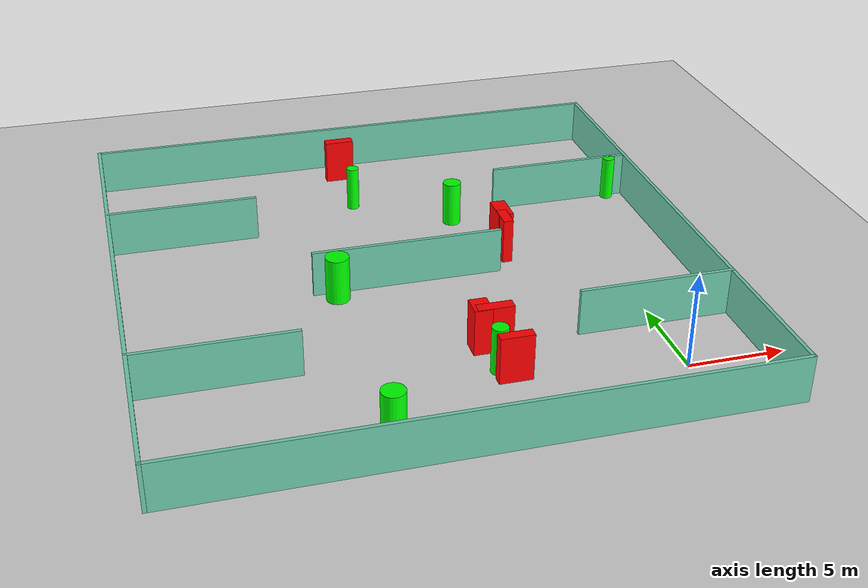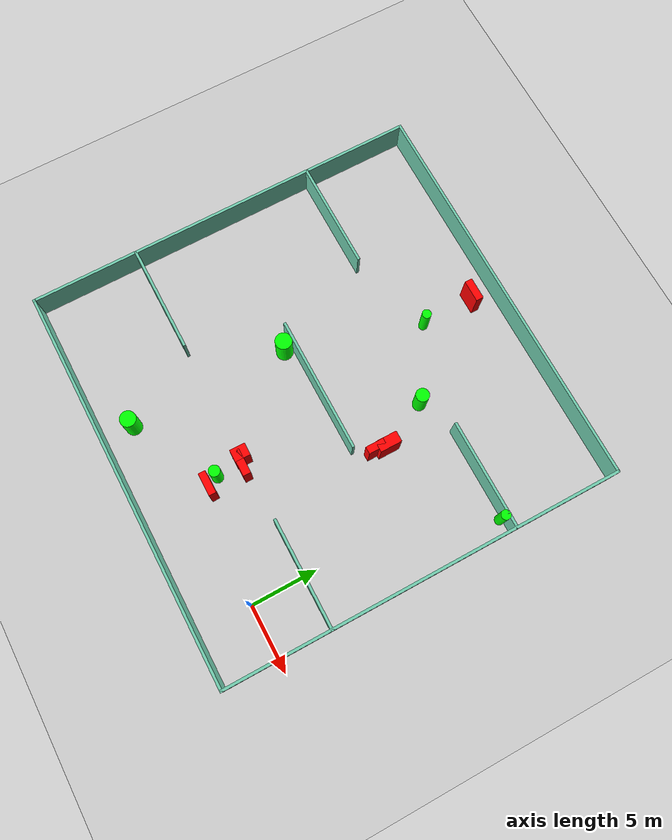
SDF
<sdf version="1.7">
 <world name="default">
  <light name="sun" type="directional">
   <pose>0 0 10 0 -0 0</pose>
   <diffuse>0.8 0.8 0.8 1</diffuse>
   <specular>0.2 0.2 0.2 1</specular>
   <attenuation>
    <range>1000</range>
    <constant>0.9</constant>
    <linear>0.01</linear>
    <quadratic>0.001</quadratic>
   </attenuation>
   <direction>-0.5 0.1 -0.9</direction>
   <spot><inner_angle>0</inner_angle><outer_angle>0</outer_angle><falloff>0</falloff></spot>
  </light>
  <model name="ground_plane">
   <static>1</static>
   <link name="link">
    <collision name="collision">
     <geometry><plane><normal>0 0 1</normal><size>100 100</size></plane></geometry>
     <surface>
      <contact><collide_bitmask>65535</collide_bitmask></contact>
      <friction><ode><mu>100</mu><mu2>50</mu2></ode></friction>
     </surface>
    </collision>
    <visual name="visual">
     <cast_shadows>0</cast_shadows>
     <geometry><plane><normal>0 0 1</normal><size>100 100</size></plane></geometry>
     <material>
      <script><uri>file://media/materials/scripts/gazebo.material</uri><name>Gazebo/Grey</name></script>
     </material>
    </visual>
   </link>
  </model>
  <gravity>0 0 -9.8</gravity>
  <magnetic_field>6e-06 2.3e-05 -4.2e-05</magnetic_field>
  <atmosphere type="adiabatic"/>
  <physics type="ode">
   <max_step_size>0.001</max_step_size>
   <real_time_factor>1</real_time_factor>
   <real_time_update_rate>1000</real_time_update_rate>
  </physics>
  <scene><ambient>0.4 0.4 0.4 1</ambient><background>0.7 0.7 0.7 1</background><shadows>1</shadows></scene>
  <spherical_coordinates>
   <surface_model>EARTH_WGS84</surface_model>
   <latitude_deg>0</latitude_deg>
   <longitude_deg>0</longitude_deg>
   <elevation>0</elevation>
   <heading_deg>0</heading_deg>
  </spherical_coordinates>
  <model name="my_base_walls">
   <link name="Wall_10">
    <collision name="Wall_10_Collision">
     <geometry><box><size>8.2 0.2 2.5</size></box></geometry>
     <pose>0 0 1.25 0 -0 0</pose>
    </collision>
    <visual name="Wall_10_Visual">
     <pose>0 0 1.25 0 -0 0</pose>
     <geometry><box><size>8.2 0.2 2.5</size></box></geometry>
     <material>
      <script><uri>file://media/materials/scripts/gazebo.material</uri><name>Gazebo/Grey</name></script>
      <ambient>0.435294 0.796078 0.67451 1</ambient>
     </material>
     <meta><layer>0</layer></meta>
    </visual>
    <pose>-11 -7 0 0 -0 0</pose>
   </link>
   <link name="Wall_12">
    <collision name="Wall_12_Collision">
     <geometry><box><size>8.2 0.2 2.5</size></box></geometry>
     <pose>0 0 1.25 0 -0 0</pose>
    </collision>
    <visual name="Wall_12_Visual">
     <pose>0 0 1.25 0 -0 0</pose>
     <geometry><box><size>8.2 0.2 2.5</size></box></geometry>
     <material>
      <script><uri>file://media/materials/scripts/gazebo.material</uri><name>Gazebo/Grey</name></script>
      <ambient>0.435294 0.796078 0.67451 1</ambient>
     </material>
     <meta><layer>0</layer></meta>
    </visual>
    <pose>-11 7 0 0 -0 0</pose>
   </link>
   <link name="Wall_14">
    <collision name="Wall_14_Collision">
     <geometry><box><size>8.2 0.2 2.5</size></box></geometry>
     <pose>0 0 1.25 0 -0 0</pose>
    </collision>
    <visual name="Wall_14_Visual">
     <pose>0 0 1.25 0 -0 0</pose>
     <geometry><box><size>8.2 0.2 2.5</size></box></geometry>
     <material>
      <script><uri>file://media/materials/scripts/gazebo.material</uri><name>Gazebo/Grey</name></script>
      <ambient>0.435294 0.796078 0.67451 1</ambient>
     </material>
     <meta><layer>0</layer></meta>
    </visual>
    <pose>11 7 0 0 -0 3.14159</pose>
   </link>
   <link name="Wall_16">
    <collision name="Wall_16_Collision">
     <geometry><box><size>10.2 0.2 2.5</size></box></geometry>
     <pose>0 0 1.25 0 -0 0</pose>
    </collision>
    <visual name="Wall_16_Visual">
     <pose>0 0 1.25 0 -0 0</pose>
     <geometry><box><size>10.2 0.2 2.5</size></box></geometry>
     <material>
      <script><uri>file://media/materials/scripts/gazebo.material</uri><name>Gazebo/Grey</name></script>
      <ambient>0.435294 0.796078 0.67451 1</ambient>
     </material>
     <meta><layer>0</layer></meta>
    </visual>
    <pose>0 0 0 0 -0 3.14159</pose>
   </link>
   <link name="Wall_2">
    <collision name="Wall_2_Collision">
     <geometry><box><size>30.2 0.2 2.5</size></box></geometry>
     <pose>0 0 1.25 0 -0 0</pose>
    </collision>
    <visual name="Wall_2_Visual">
     <pose>0 0 1.25 0 -0 0</pose>
     <geometry><box><size>30.2 0.2 2.5</size></box></geometry>
     <material>
      <script><uri>file://media/materials/scripts/gazebo.material</uri><name>Gazebo/Grey</name></script>
      <ambient>0.435294 0.796078 0.67451 1</ambient>
     </material>
     <meta><layer>0</layer></meta>
    </visual>
    <pose>0 -15 0 0 -0 3.14159</pose>
   </link>
   <link name="Wall_3">
    <collision name="Wall_3_Collision">
     <geometry><box><size>30.2 0.2 2.5</size></box></geometry>
     <pose>0 0 1.25 0 -0 0</pose>
    </collision>
    <visual name="Wall_3_Visual">
     <pose>0 0 1.25 0 -0 0</pose>
     <geometry><box><size>30.2 0.2 2.5</size></box></geometry>
     <material>
      <script><uri>file://media/materials/scripts/gazebo.material</uri><name>Gazebo/Grey</name></script>
      <ambient>0.435294 0.796078 0.67451 1</ambient>
     </material>
     <meta><layer>0</layer></meta>
    </visual>
    <pose>-15 0 0 0 -0 1.5708</pose>
   </link>
   <link name="Wall_4">
    <collision name="Wall_4_Collision">
     <geometry><box><size>30.2 0.2 2.5</size></box></geometry>
     <pose>0 0 1.25 0 -0 0</pose>
    </collision>
    <visual name="Wall_4_Visual">
     <pose>0 0 1.25 0 -0 0</pose>
     <geometry><box><size>30.2 0.2 2.5</size></box></geometry>
     <material>
      <script><uri>file://media/materials/scripts/gazebo.material</uri><name>Gazebo/Grey</name></script>
      <ambient>0.435294 0.796078 0.67451 1</ambient>
     </material>
     <meta><layer>0</layer></meta>
    </visual>
    <pose>0 15 0 0 -0 0</pose>
   </link>
   <link name="Wall_6">
    <collision name="Wall_6_Collision">
     <geometry><box><size>30.2 0.2 2.5</size></box></geometry>
     <pose>0 0 1.25 0 -0 0</pose>
    </collision>
    <visual name="Wall_6_Visual">
     <pose>0 0 1.25 0 -0 0</pose>
     <geometry><box><size>30.2 0.2 2.5</size></box></geometry>
     <material>
      <script><uri>file://media/materials/scripts/gazebo.material</uri><name>Gazebo/Grey</name></script>
      <ambient>0.435294 0.796078 0.67451 1</ambient>
     </material>
     <meta><layer>0</layer></meta>
    </visual>
    <pose>15 0 0 0 -0 1.5708</pose>
   </link>
   <link name="Wall_8">
    <collision name="Wall_8_Collision">
     <geometry><box><size>8.2 0.2 2.5</size></box></geometry>
     <pose>0 0 1.25 0 -0 0</pose>
    </collision>
    <visual name="Wall_8_Visual">
     <pose>0 0 1.25 0 -0 0</pose>
     <geometry><box><size>8.2 0.2 2.5</size></box></geometry>
     <material>
      <script><uri>file://media/materials/scripts/gazebo.material</uri><name>Gazebo/Grey</name></script>
      <ambient>0.435294 0.796078 0.67451 1</ambient>
     </material>
     <meta><layer>0</layer></meta>
    </visual>
    <pose>11 -7 0 0 -0 3.14159</pose>
   </link>
   <static>1</static>
   <pose>-11 11 0 0 -0 0</pose>
  </model>
  <model name="cylinder1">
   <static>1</static>
   <link name="link">
    <inertial>
     <mass>1</mass>
     <inertia><ixx>0.5</ixx><ixy>0</ixy><ixz>0</ixz><iyy>0.5</iyy><iyz>0</iyz><izz>1</izz></inertia>
    </inertial>
    <collision name="collision">
     <geometry><cylinder><radius>0.49799811325270016</radius><length>2.5</length></cylinder></geometry>
    </collision>
    <visual name="visual">
     <geometry><cylinder><radius>0.49799811325270016</radius><length>2.5</length></cylinder></geometry>
     <material>
      <ambient>0 1 0 1</ambient>
      <diffuse>0 1 0 1</diffuse>
      <specular>0.1 0.1 0.1 1</specular>
      <emissive>0 0 0 0</emissive>
     </material>
    </visual>
   </link>
   <pose>-6.881153634765852 16.98682082065528 1.25 0 0 0</pose>
  </model>
  <model name="cylinder2">
   <static>1</static>
   <link name="link">
    <inertial>
     <mass>1</mass>
     <inertia><ixx>0.5</ixx><ixy>0</ixy><ixz>0</ixz><iyy>0.5</iyy><iyz>0</iyz><izz>1</izz></inertia>
    </inertial>
    <collision name="collision">
     <geometry><cylinder><radius>0.34023226555556085</radius><length>2.5</length></cylinder></geometry>
    </collision>
    <visual name="visual">
     <geometry><cylinder><radius>0.34023226555556085</radius><length>2.5</length></cylinder></geometry>
     <material>
      <ambient>0 1 0 1</ambient>
      <diffuse>0 1 0 1</diffuse>
      <specular>0.1 0.1 0.1 1</specular>
      <emissive>0 0 0 0</emissive>
     </material>
    </visual>
   </link>
   <pose>-11.938128481052283 20.22883890365741 1.25 0 0 0</pose>
  </model>
  <model name="cylinder3">
   <static>1</static>
   <link name="link">
    <inertial>
     <mass>1</mass>
     <inertia><ixx>0.5</ixx><ixy>0</ixy><ixz>0</ixz><iyy>0.5</iyy><iyz>0</iyz><izz>1</izz></inertia>
    </inertial>
    <collision name="collision">
     <geometry><cylinder><radius>0.6287452709846095</radius><length>2.5</length></cylinder></geometry>
    </collision>
    <visual name="visual">
     <geometry><cylinder><radius>0.6287452709846095</radius><length>2.5</length></cylinder></geometry>
     <material>
      <ambient>0 1 0 1</ambient>
      <diffuse>0 1 0 1</diffuse>
      <specular>0.1 0.1 0.1 1</specular>
      <emissive>0 0 0 0</emissive>
     </material>
    </visual>
   </link>
   <pose>-14.922247256441976 10.305545382328662 1.25 0 0 0</pose>
  </model>
  <model name="cylinder4">
   <static>1</static>
   <link name="link">
    <inertial>
     <mass>1</mass>
     <inertia><ixx>0.5</ixx><ixy>0</ixy><ixz>0</ixz><iyy>0.5</iyy><iyz>0</iyz><izz>1</izz></inertia>
    </inertial>
    <collision name="collision">
     <geometry><cylinder><radius>0.35543631965402867</radius><length>2.5</length></cylinder></geometry>
    </collision>
    <visual name="visual">
     <geometry><cylinder><radius>0.35543631965402867</radius><length>2.5</length></cylinder></geometry>
     <material>
      <ambient>0 1 0 1</ambient>
      <diffuse>0 1 0 1</diffuse>
      <specular>0.1 0.1 0.1 1</specular>
      <emissive>0 0 0 0</emissive>
     </material>
    </visual>
   </link>
   <pose>2.940732958067372 17.762610408205916 1.25 0 0 0</pose>
  </model>
  <model name="cylinder5">
   <static>1</static>
   <link name="link">
    <inertial>
     <mass>1</mass>
     <inertia><ixx>0.5</ixx><ixy>0</ixy><ixz>0</ixz><iyy>0.5</iyy><iyz>0</iyz><izz>1</izz></inertia>
    </inertial>
    <collision name="collision">
     <geometry><cylinder><radius>0.4181197647368835</radius><length>2.5</length></cylinder></geometry>
    </collision>
    <visual name="visual">
     <geometry><cylinder><radius>0.4181197647368835</radius><length>2.5</length></cylinder></geometry>
     <material>
      <ambient>0 1 0 1</ambient>
      <diffuse>0 1 0 1</diffuse>
      <specular>0.1 0.1 0.1 1</specular>
      <emissive>0 0 0 0</emissive>
     </material>
    </visual>
   </link>
   <pose>-8.90137504764315 1.8909529472108213 1.25 0 0 0</pose>
  </model>
  <model name="cylinder6">
   <static>1</static>
   <link name="link">
    <inertial>
     <mass>1</mass>
     <inertia><ixx>0.5</ixx><ixy>0</ixy><ixz>0</ixz><iyy>0.5</iyy><iyz>0</iyz><izz>1</izz></inertia>
    </inertial>
    <collision name="collision">
     <geometry><cylinder><radius>0.5924022142421816</radius><length>2.5</length></cylinder></geometry>
    </collision>
    <visual name="visual">
     <geometry><cylinder><radius>0.5924022142421816</radius><length>2.5</length></cylinder></geometry>
     <material>
      <ambient>0 1 0 1</ambient>
      <diffuse>0 1 0 1</diffuse>
      <specular>0.1 0.1 0.1 1</specular>
      <emissive>0 0 0 0</emissive>
     </material>
    </visual>
   </link>
   <pose>-14.9515888101979 -1.7528235643910466 1.25 0 0 0</pose>
  </model>
  <model name="box1">
   <static>1</static>
   <link name="link">
    <inertial>
     <mass>1</mass>
     <inertia><ixx>0.083</ixx><ixy>0</ixy><ixz>0</ixz><iyy>0.083</iyy><iyz>0</iyz><izz>0.083</izz></inertia>
    </inertial>
    <collision name="collision">
     <geometry><box><size>1.6292415219925405 0.563102952598031 2.5</size></box></geometry>
    </collision>
    <visual name="visual">
     <geometry><box><size>1.6292415219925405 0.563102952598031 2.5</size></box></geometry>
     <material>
      <ambient>1 0 0 1</ambient>
      <diffuse>1 0 0 1</diffuse>
      <specular>0.1 0.1 0.1 1</specular>
      <emissive>0 0 0 0</emissive>
     </material>
    </visual>
    <sensor name="my_contact" type="contact">
     <contact><collision>box_collision</collision><topic>__default_topic__</topic></contact>
    </sensor>
   </link>
   <pose>-11.942190137189353 24.149305891813952 1.25 0 0 0</pose>
  </model>
  <model name="box2">
   <static>1</static>
   <link name="link">
    <inertial>
     <mass>1</mass>
     <inertia><ixx>0.083</ixx><ixy>0</ixy><ixz>0</ixz><iyy>0.083</iyy><iyz>0</iyz><izz>0.083</izz></inertia>
    </inertial>
    <collision name="collision">
     <geometry><box><size>1.7057748344102706 0.5373214842203463 2.5</size></box></geometry>
    </collision>
    <visual name="visual">
     <geometry><box><size>1.7057748344102706 0.5373214842203463 2.5</size></box></geometry>
     <material>
      <ambient>1 0 0 1</ambient>
      <diffuse>1 0 0 1</diffuse>
      <specular>0.1 0.1 0.1 1</specular>
      <emissive>0 0 0 0</emissive>
     </material>
    </visual>
    <sensor name="my_contact" type="contact">
     <contact><collision>box_collision</collision><topic>__default_topic__</topic></contact>
    </sensor>
   </link>
   <pose>-8.380042271525145 1.0859635497856956 1.25 0 0 0</pose>
  </model>
  <model name="box3">
   <static>1</static>
   <link name="link">
    <inertial>
     <mass>1</mass>
     <inertia><ixx>0.083</ixx><ixy>0</ixy><ixz>0</ixz><iyy>0.083</iyy><iyz>0</iyz><izz>0.083</izz></inertia>
    </inertial>
    <collision name="collision">
     <geometry><box><size>0.537493939168311 1.3524111310689277 2.5</size></box></geometry>
    </collision>
    <visual name="visual">
     <geometry><box><size>0.537493939168311 1.3524111310689277 2.5</size></box></geometry>
     <material>
      <ambient>1 0 0 1</ambient>
      <diffuse>1 0 0 1</diffuse>
      <specular>0.1 0.1 0.1 1</specular>
      <emissive>0 0 0 0</emissive>
     </material>
    </visual>
    <sensor name="my_contact" type="contact">
     <contact><collision>box_collision</collision><topic>__default_topic__</topic></contact>
    </sensor>
   </link>
   <pose>-5.239133122712257 12.39472913839819 1.25 0 0 0</pose>
  </model>
  <model name="box4">
   <static>1</static>
   <link name="link">
    <inertial>
     <mass>1</mass>
     <inertia><ixx>0.083</ixx><ixy>0</ixy><ixz>0</ixz><iyy>0.083</iyy><iyz>0</iyz><izz>0.083</izz></inertia>
    </inertial>
    <collision name="collision">
     <geometry><box><size>1.8504757667350331 0.5881255596581277 2.5</size></box></geometry>
    </collision>
    <visual name="visual">
     <geometry><box><size>1.8504757667350331 0.5881255596581277 2.5</size></box></geometry>
     <material>
      <ambient>1 0 0 1</ambient>
      <diffuse>1 0 0 1</diffuse>
      <specular>0.1 0.1 0.1 1</specular>
      <emissive>0 0 0 0</emissive>
     </material>
    </visual>
    <sensor name="my_contact" type="contact">
     <contact><collision>box_collision</collision><topic>__default_topic__</topic></contact>
    </sensor>
   </link>
   <pose>-8.566874819815133 3.7483980672192 1.25 0 0 0</pose>
  </model>
  <model name="box5">
   <static>1</static>
   <link name="link">
    <inertial>
     <mass>1</mass>
     <inertia><ixx>0.083</ixx><ixy>0</ixy><ixz>0</ixz><iyy>0.083</iyy><iyz>0</iyz><izz>0.083</izz></inertia>
    </inertial>
    <collision name="collision">
     <geometry><box><size>0.9207900174179067 1.1562535812143675 2.5</size></box></geometry>
    </collision>
    <visual name="visual">
     <geometry><box><size>0.9207900174179067 1.1562535812143675 2.5</size></box></geometry>
     <material>
      <ambient>1 0 0 1</ambient>
      <diffuse>1 0 0 1</diffuse>
      <specular>0.1 0.1 0.1 1</specular>
      <emissive>0 0 0 0</emissive>
     </material>
    </visual>
    <sensor name="my_contact" type="contact">
     <contact><collision>box_collision</collision><topic>__default_topic__</topic></contact>
    </sensor>
   </link>
   <pose>-9.217234447575946 3.995209062747696 1.25 0 0 0</pose>
  </model>
  <model name="box6">
   <static>1</static>
   <link name="link">
    <inertial>
     <mass>1</mass>
     <inertia><ixx>0.083</ixx><ixy>0</ixy><ixz>0</ixz><iyy>0.083</iyy><iyz>0</iyz><izz>0.083</izz></inertia>
    </inertial>
    <collision name="collision">
     <geometry><box><size>0.8194451279481536 1.634696728692581 2.5</size></box></geometry>
    </collision>
    <visual name="visual">
     <geometry><box><size>0.8194451279481536 1.634696728692581 2.5</size></box></geometry>
     <material>
      <ambient>1 0 0 1</ambient>
      <diffuse>1 0 0 1</diffuse>
      <specular>0.1 0.1 0.1 1</specular>
      <emissive>0 0 0 0</emissive>
     </material>
    </visual>
    <sensor name="my_contact" type="contact">
     <contact><collision>box_collision</collision><topic>__default_topic__</topic></contact>
    </sensor>
   </link>
   <pose>-5.121201350846974 13.297997233456037 1.25 0 0 0</pose>
  </model>
 </world>
</sdf>
